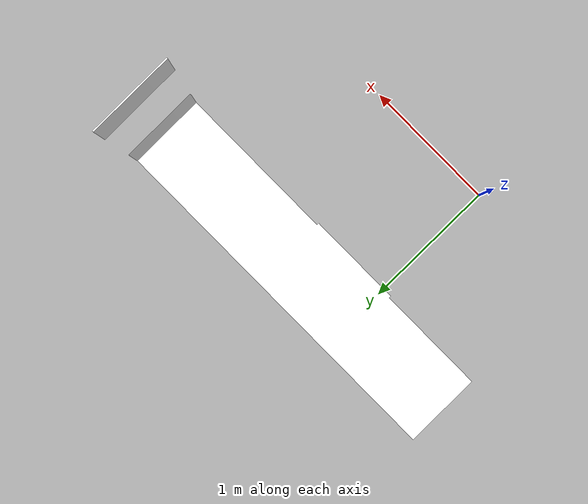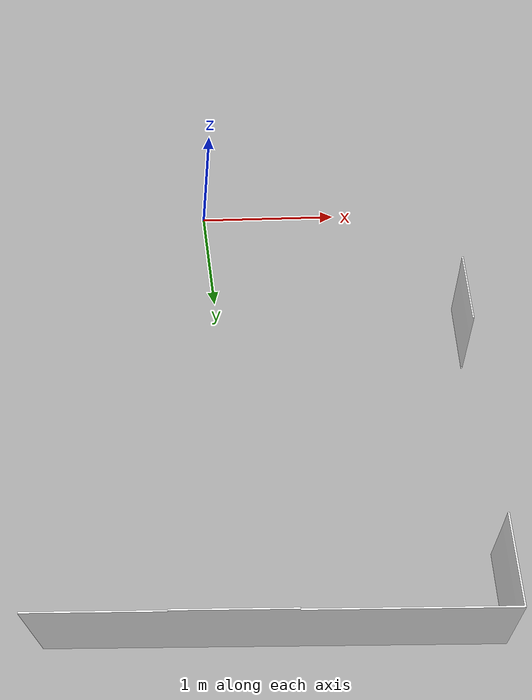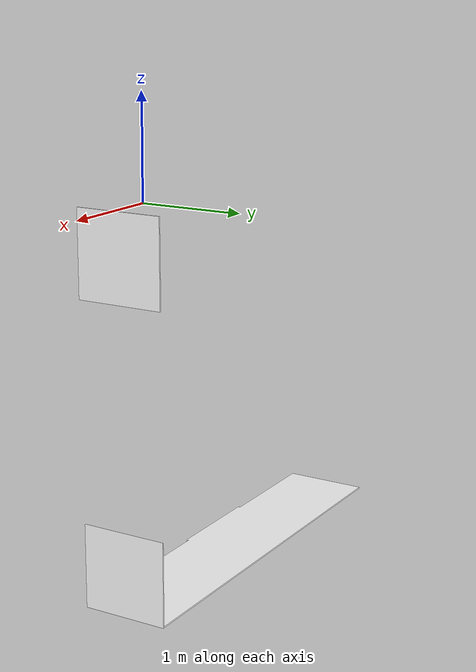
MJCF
<mujoco model="BackSplash_17623cb1">
  <compiler autolimits="true" boundmass="0.01" angle="radian"/>
  <default>
    <default class="/">
      <default class="__VISUAL_MJT__">
        <geom contype="0" conaffinity="0" group="0" mass="1e-08"/>
      </default>
      <default class="__STRUCTURAL_MJT__">
        <geom contype="8" conaffinity="15" group="4" friction="0.90000000000000002 0.90000000000000002 0.001" density="500" solref="0.025000000000000001 1" solimp="0.998 0.998 0.001"/>
      </default>
      <default class="__DYNAMIC_MJT__">
        <geom contype="1" conaffinity="15" group="4" friction="0.90000000000000002 0.90000000000000002 0.001" density="500" solref="0.025000000000000001 1" solimp="0.998 0.998 0.001"/>
      </default>
      <default class="__ARTICULABLE_DYNAMIC_MJT__">
        <geom contype="0" conaffinity="7" group="4" friction="0.90000000000000002 0.90000000000000002 0.001" density="500" solref="0.025000000000000001 1" solimp="0.998 0.998 0.001"/>
      </default>
    </default>
  </default>
  <asset>
    <material name="material_SubwayTilesAO" class="/" specular="0.5" shininess="0.5" rgba="1 1 1 1"/>
    <mesh name="BackSplash_17623cb1_BackSplash_17623cb1" class="/" file="BackSplash_17623cb1_BackSplash_17623cb1/BackSplash_17623cb1_BackSplash_17623cb1.obj" scale="1 1 1" inertia="legacy"/>
  </asset>
  <worldbody>
    <body name="BackSplash_17623cb1">
      <body name="BackSplash_17623cb1_BackSplash_17623cb1" pos="-0 0 0" quat="1 0 0 0">
        <geom name="BackSplash_17623cb1_BackSplash_17623cb1" class="__VISUAL_MJT__" type="mesh" material="material_SubwayTilesAO" mesh="BackSplash_17623cb1_BackSplash_17623cb1"/>
        <geom name="BackSplash_17623cb1_BackSplash_17623cb1_PrimitiveCollider_0" class="__DYNAMIC_MJT__" type="box" size="0.010241985321044922 0.36366856098175049 0.35482293367385864" rgba="0 1 0 1" pos="2.1927690505981445 1.2590080499649048 0.051000118255615234" quat="0 1 0 0"/>
        <geom name="BackSplash_17623cb1_BackSplash_17623cb1_PrimitiveCollider_1" class="__DYNAMIC_MJT__" type="box" size="0.010241985321044922 0.36366856098175049 0.34891051054000854" rgba="0 1 0 1" pos="2.1927690505981445 1.2590080499649048 -2.4440000057220459" quat="0 1 0 0"/>
        <geom name="BackSplash_17623cb1_BackSplash_17623cb1_PrimitiveCollider_2" class="__DYNAMIC_MJT__" type="box" size="1.7101805210113525 0.36366856098175049 0.010241985321044922" rgba="0 1 0 1" pos="0.47976887226104736 1.2590080499649048 -2.7909998893737793" quat="0 1 0 0"/>
      </body>
    </body>
  </worldbody>
</mujoco>
